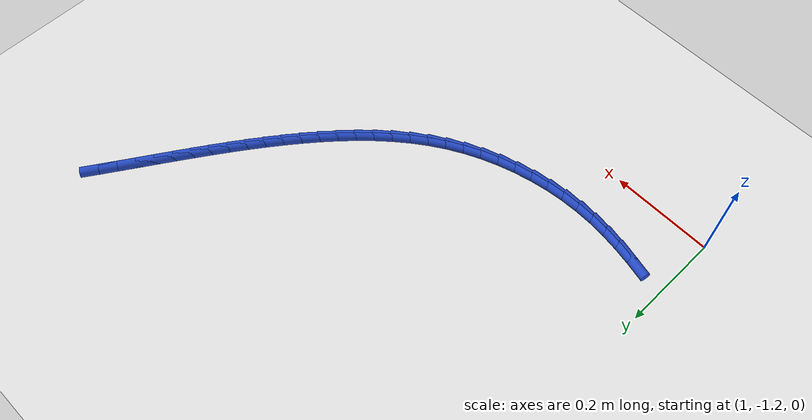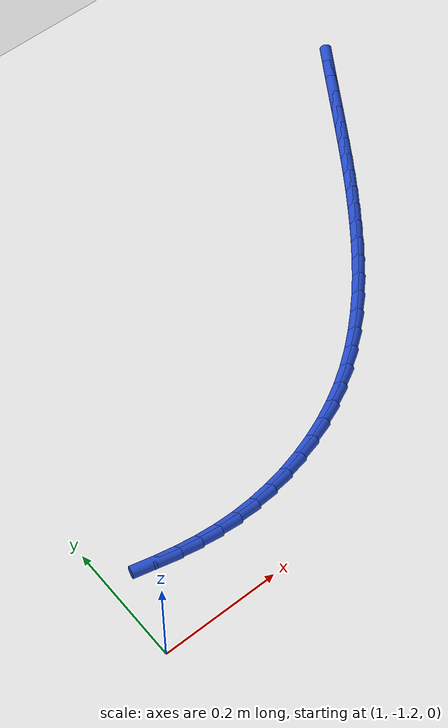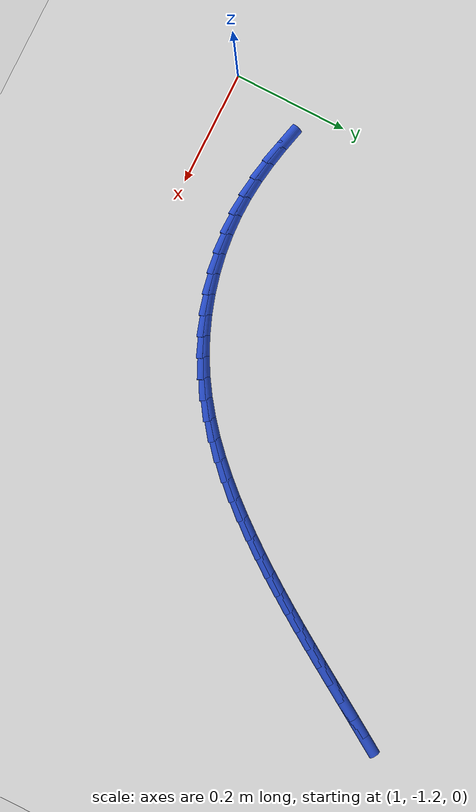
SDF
<sdf version="1.6">
 <world name="default">
  <model name="ground_plane">
   <static>1</static>
   <link name="link">
    <collision name="collision">
     <geometry><plane><normal>0 0 1</normal><size>100 100</size></plane></geometry>
     <surface><friction><ode><mu>100</mu><mu2>50</mu2></ode></friction></surface>
    </collision>
    <visual name="visual">
     <cast_shadows>0</cast_shadows>
     <geometry><plane><normal>0 0 1</normal><size>100 100</size></plane></geometry>
     <material>
      <script><uri>file://media/materials/scripts/gazebo.material</uri><name>Gazebo/WhiteGlow</name></script>
     </material>
    </visual>
   </link>
  </model>
  <model name="line">
   <link name="link_111">
    <pose>1.8955571593087832 -0.5098945809529504 0.01 0 1.57 1.0069118564584052</pose>
    <collision name="collision">
     <geometry><cylinder><radius>0.01</radius><length>0.08</length></cylinder></geometry>
    </collision>
    <visual name="visual">
     <material>
      <script><name>Gazebo/Blue</name><uri>file://media/materials/scripts/gazebo.material</uri></script>
     </material>
     <geometry><cylinder><radius>0.01</radius><length>0.08</length></cylinder></geometry>
    </visual>
   </link>
   <link name="link_112">
    <pose>1.8766444062649728 -0.5398021201382628 0.01 0 1.57 1.0102673231190997</pose>
    <collision name="collision">
     <geometry><cylinder><radius>0.01</radius><length>0.08</length></cylinder></geometry>
    </collision>
    <visual name="visual">
     <material>
      <script><name>Gazebo/Blue</name><uri>file://media/materials/scripts/gazebo.material</uri></script>
     </material>
     <geometry><cylinder><radius>0.01</radius><length>0.08</length></cylinder></geometry>
    </visual>
   </link>
   <link name="link_113">
    <pose>1.8579600042903914 -0.5695692021608962 0.01 0 1.57 1.0109697764478496</pose>
    <collision name="collision">
     <geometry><cylinder><radius>0.01</radius><length>0.08</length></cylinder></geometry>
    </collision>
    <visual name="visual">
     <material>
      <script><name>Gazebo/Blue</name><uri>file://media/materials/scripts/gazebo.material</uri></script>
     </material>
     <geometry><cylinder><radius>0.01</radius><length>0.08</length></cylinder></geometry>
    </visual>
   </link>
   <link name="link_114">
    <pose>1.8394034573542175 -0.5991787633503218 0.01 0 1.57 1.0089707595731063</pose>
    <collision name="collision">
     <geometry><cylinder><radius>0.01</radius><length>0.08</length></cylinder></geometry>
    </collision>
    <visual name="visual">
     <material>
      <script><name>Gazebo/Blue</name><uri>file://media/materials/scripts/gazebo.material</uri></script>
     </material>
     <geometry><cylinder><radius>0.01</radius><length>0.08</length></cylinder></geometry>
    </visual>
   </link>
   <link name="link_115">
    <pose>1.8208742694256272 -0.62861374003601 0.01 0 1.57 1.0042391082364222</pose>
    <collision name="collision">
     <geometry><cylinder><radius>0.01</radius><length>0.08</length></cylinder></geometry>
    </collision>
    <visual name="visual">
     <material>
      <script><name>Gazebo/Blue</name><uri>file://media/materials/scripts/gazebo.material</uri></script>
     </material>
     <geometry><cylinder><radius>0.01</radius><length>0.08</length></cylinder></geometry>
    </visual>
   </link>
   <link name="link_116">
    <pose>1.8022719444738 -0.6578570685474324 0.01 0 1.57 0.9967621589920037</pose>
    <collision name="collision">
     <geometry><cylinder><radius>0.01</radius><length>0.08</length></cylinder></geometry>
    </collision>
    <visual name="visual">
     <material>
      <script><name>Gazebo/Blue</name><uri>file://media/materials/scripts/gazebo.material</uri></script>
     </material>
     <geometry><cylinder><radius>0.01</radius><length>0.08</length></cylinder></geometry>
    </visual>
   </link>
   <link name="link_117">
    <pose>1.7834959864679125 -0.6868916852140603 0.01 0 1.57 0.9865472864909596</pose>
    <collision name="collision">
     <geometry><cylinder><radius>0.01</radius><length>0.08</length></cylinder></geometry>
    </collision>
    <visual name="visual">
     <material>
      <script><name>Gazebo/Blue</name><uri>file://media/materials/scripts/gazebo.material</uri></script>
     </material>
     <geometry><cylinder><radius>0.01</radius><length>0.08</length></cylinder></geometry>
    </visual>
   </link>
   <link name="link_118">
    <pose>1.7644458993771432 -0.7157005263653637 0.01 0 1.57 0.9736237173154415</pose>
    <collision name="collision">
     <geometry><cylinder><radius>0.01</radius><length>0.08</length></cylinder></geometry>
    </collision>
    <visual name="visual">
     <material>
      <script><name>Gazebo/Blue</name><uri>file://media/materials/scripts/gazebo.material</uri></script>
     </material>
     <geometry><cylinder><radius>0.01</radius><length>0.08</length></cylinder></geometry>
    </visual>
   </link>
   <link name="link_119">
    <pose>1.745021187170669 -0.7442665283308157 0.01 0 1.57 0.9580445101673196</pose>
    <collision name="collision">
     <geometry><cylinder><radius>0.01</radius><length>0.08</length></cylinder></geometry>
    </collision>
    <visual name="visual">
     <material>
      <script><name>Gazebo/Blue</name><uri>file://media/materials/scripts/gazebo.material</uri></script>
     </material>
     <geometry><cylinder><radius>0.01</radius><length>0.08</length></cylinder></geometry>
    </visual>
   </link>
   <link name="link_120">
    <pose>1.725121353817667 -0.7725726274398865 0.01 0 1.57 0.939888532464701</pose>
    <collision name="collision">
     <geometry><cylinder><radius>0.01</radius><length>0.08</length></cylinder></geometry>
    </collision>
    <visual name="visual">
     <material>
      <script><name>Gazebo/Blue</name><uri>file://media/materials/scripts/gazebo.material</uri></script>
     </material>
     <geometry><cylinder><radius>0.01</radius><length>0.08</length></cylinder></geometry>
    </visual>
   </link>
   <link name="link_121">
    <pose>1.7046459032873165 -0.8006017600220474 0.01 0 1.57 0.9192147660370584</pose>
    <collision name="collision">
     <geometry><cylinder><radius>0.01</radius><length>0.08</length></cylinder></geometry>
    </collision>
    <visual name="visual">
     <material>
      <script><name>Gazebo/Blue</name><uri>file://media/materials/scripts/gazebo.material</uri></script>
     </material>
     <geometry><cylinder><radius>0.01</radius><length>0.08</length></cylinder></geometry>
    </visual>
   </link>
   <link name="link_122">
    <pose>1.6834948248521404 -0.8283334974762596 0.01 0 1.57 0.8949337531426339</pose>
    <collision name="collision">
     <geometry><cylinder><radius>0.01</radius><length>0.08</length></cylinder></geometry>
    </collision>
    <visual name="visual">
     <material>
      <script><name>Gazebo/Blue</name><uri>file://media/materials/scripts/gazebo.material</uri></script>
     </material>
     <geometry><cylinder><radius>0.01</radius><length>0.08</length></cylinder></geometry>
    </visual>
   </link>
   <link name="link_123">
    <pose>1.661580145085411 -0.8556639485985437 0.01 0 1.57 0.8657345259381537</pose>
    <collision name="collision">
     <geometry><cylinder><radius>0.01</radius><length>0.08</length></cylinder></geometry>
    </collision>
    <visual name="visual">
     <material>
      <script><name>Gazebo/Blue</name><uri>file://media/materials/scripts/gazebo.material</uri></script>
     </material>
     <geometry><cylinder><radius>0.01</radius><length>0.08</length></cylinder></geometry>
    </visual>
   </link>
   <link name="link_124">
    <pose>1.6388264352201682 -0.8824022417248244 0.01 0 1.57 0.8313888661960267</pose>
    <collision name="collision">
     <geometry><cylinder><radius>0.01</radius><length>0.08</length></cylinder></geometry>
    </collision>
    <visual name="visual">
     <material>
      <script><name>Gazebo/Blue</name><uri>file://media/materials/scripts/gazebo.material</uri></script>
     </material>
     <geometry><cylinder><radius>0.01</radius><length>0.08</length></cylinder></geometry>
    </visual>
   </link>
   <link name="link_125">
    <pose>1.615158853318823 -0.9083534363131379 0.01 0 1.57 0.7917024987694329</pose>
    <collision name="collision">
     <geometry><cylinder><radius>0.01</radius><length>0.08</length></cylinder></geometry>
    </collision>
    <visual name="visual">
     <material>
      <script><name>Gazebo/Blue</name><uri>file://media/materials/scripts/gazebo.material</uri></script>
     </material>
     <geometry><cylinder><radius>0.01</radius><length>0.08</length></cylinder></geometry>
    </visual>
   </link>
   <link name="link_126">
    <pose>1.5905025574437874 -0.9333225918215233 0.01 0 1.57 0.746484330247545</pose>
    <collision name="collision">
     <geometry><cylinder><radius>0.01</radius><length>0.08</length></cylinder></geometry>
    </collision>
    <visual name="visual">
     <material>
      <script><name>Gazebo/Blue</name><uri>file://media/materials/scripts/gazebo.material</uri></script>
     </material>
     <geometry><cylinder><radius>0.01</radius><length>0.08</length></cylinder></geometry>
    </visual>
   </link>
   <link name="link_127">
    <pose>1.5647827056574721 -0.9571147677080166 0.01 0 1.57 0.6955810408849141</pose>
    <collision name="collision">
     <geometry><cylinder><radius>0.01</radius><length>0.08</length></cylinder></geometry>
    </collision>
    <visual name="visual">
     <material>
      <script><name>Gazebo/Blue</name><uri>file://media/materials/scripts/gazebo.material</uri></script>
     </material>
     <geometry><cylinder><radius>0.01</radius><length>0.08</length></cylinder></geometry>
    </visual>
   </link>
   <link name="link_128">
    <pose>1.5379244560222893 -0.9795350234306551 0.01 0 1.57 0.6389206097102053</pose>
    <collision name="collision">
     <geometry><cylinder><radius>0.01</radius><length>0.08</length></cylinder></geometry>
    </collision>
    <visual name="visual">
     <material>
      <script><name>Gazebo/Blue</name><uri>file://media/materials/scripts/gazebo.material</uri></script>
     </material>
     <geometry><cylinder><radius>0.01</radius><length>0.08</length></cylinder></geometry>
    </visual>
   </link>
   <link name="link_129">
    <pose>1.5098529666006504 -1.0003884184474763 0.01 0 1.57 0.5765636977888142</pose>
    <collision name="collision">
     <geometry><cylinder><radius>0.01</radius><length>0.08</length></cylinder></geometry>
    </collision>
    <visual name="visual">
     <material>
      <script><name>Gazebo/Blue</name><uri>file://media/materials/scripts/gazebo.material</uri></script>
     </material>
     <geometry><cylinder><radius>0.01</radius><length>0.08</length></cylinder></geometry>
    </visual>
   </link>
   <link name="link_130">
    <pose>1.4804933954549666 -1.0194800122165169 0.01 0 1.57 0.5091916497148785</pose>
    <collision name="collision">
     <geometry><cylinder><radius>0.01</radius><length>0.08</length></cylinder></geometry>
    </collision>
    <visual name="visual">
     <material>
      <script><name>Gazebo/Blue</name><uri>file://media/materials/scripts/gazebo.material</uri></script>
     </material>
     <geometry><cylinder><radius>0.01</radius><length>0.08</length></cylinder></geometry>
    </visual>
   </link>
   <link name="link_131">
    <pose>1.4497877149013514 -1.0366229299976661 0.01 0 1.57 0.441336494321018</pose>
    <collision name="collision">
     <geometry><cylinder><radius>0.01</radius><length>0.08</length></cylinder></geometry>
    </collision>
    <visual name="visual">
     <material>
      <script><name>Gazebo/Blue</name><uri>file://media/materials/scripts/gazebo.material</uri></script>
     </material>
     <geometry><cylinder><radius>0.01</radius><length>0.08</length></cylinder></geometry>
    </visual>
   </link>
   <link name="link_132">
    <pose>1.4178478020280612 -1.0517118004139765 0.01 0 1.57 0.37503575925252997</pose>
    <collision name="collision">
     <geometry><cylinder><radius>0.01</radius><length>0.08</length></cylinder></geometry>
    </collision>
    <visual name="visual">
     <material>
      <script><name>Gazebo/Blue</name><uri>file://media/materials/scripts/gazebo.material</uri></script>
     </material>
     <geometry><cylinder><radius>0.01</radius><length>0.08</length></cylinder></geometry>
    </visual>
   </link>
   <link name="link_133">
    <pose>1.384884119152895 -1.0646885434486248 0.01 0 1.57 0.30967253331766703</pose>
    <collision name="collision">
     <geometry><cylinder><radius>0.01</radius><length>0.08</length></cylinder></geometry>
    </collision>
    <visual name="visual">
     <material>
      <script><name>Gazebo/Blue</name><uri>file://media/materials/scripts/gazebo.material</uri></script>
     </material>
     <geometry><cylinder><radius>0.01</radius><length>0.08</length></cylinder></geometry>
    </visual>
   </link>
   <link name="link_134">
    <pose>1.3511083403095803 -1.0754956603452308 0.01 0 1.57 0.2445937307580888</pose>
    <collision name="collision">
     <geometry><cylinder><radius>0.01</radius><length>0.08</length></cylinder></geometry>
    </collision>
    <visual name="visual">
     <material>
      <script><name>Gazebo/Blue</name><uri>file://media/materials/scripts/gazebo.material</uri></script>
     </material>
     <geometry><cylinder><radius>0.01</radius><length>0.08</length></cylinder></geometry>
    </visual>
   </link>
   <link name="link_135">
    <pose>1.3167321395318434 -1.0840756523474144 0.01 0 1.57 0.1791425079773024</pose>
    <collision name="collision">
     <geometry><cylinder><radius>0.01</radius><length>0.08</length></cylinder></geometry>
    </collision>
    <visual name="visual">
     <material>
      <script><name>Gazebo/Blue</name><uri>file://media/materials/scripts/gazebo.material</uri></script>
     </material>
     <geometry><cylinder><radius>0.01</radius><length>0.08</length></cylinder></geometry>
    </visual>
   </link>
   <link name="link_136">
    <pose>1.2819671908534096 -1.0903710206987947 0.01 0 1.57 0.11265824872378975</pose>
    <collision name="collision">
     <geometry><cylinder><radius>0.01</radius><length>0.08</length></cylinder></geometry>
    </collision>
    <visual name="visual">
     <material>
      <script><name>Gazebo/Blue</name><uri>file://media/materials/scripts/gazebo.material</uri></script>
     </material>
     <geometry><cylinder><radius>0.01</radius><length>0.08</length></cylinder></geometry>
    </visual>
   </link>
   <link name="link_137">
    <pose>1.2470251683080062 -1.0943242666429915 0.01 0 1.57 0.044477651103819585</pose>
    <collision name="collision">
     <geometry><cylinder><radius>0.01</radius><length>0.08</length></cylinder></geometry>
    </collision>
    <visual name="visual">
     <material>
      <script><name>Gazebo/Blue</name><uri>file://media/materials/scripts/gazebo.material</uri></script>
     </material>
     <geometry><cylinder><radius>0.01</radius><length>0.08</length></cylinder></geometry>
    </visual>
   </link>
   <link name="link_138">
    <pose>1.2121177459293593 -1.095877891423625 0.01 0 1.57 -0.025931912076260423</pose>
    <collision name="collision">
     <geometry><cylinder><radius>0.01</radius><length>0.08</length></cylinder></geometry>
    </collision>
    <visual name="visual">
     <material>
      <script><name>Gazebo/Blue</name><uri>file://media/materials/scripts/gazebo.material</uri></script>
     </material>
     <geometry><cylinder><radius>0.01</radius><length>0.08</length></cylinder></geometry>
    </visual>
   </link>
   <link name="link_139">
    <pose>1.1774535590577901 -1.0949787812286753 0.01 0 1.57 -0.09405080334880923</pose>
    <collision name="collision">
     <geometry><cylinder><radius>0.01</radius><length>0.08</length></cylinder></geometry>
    </collision>
    <visual name="visual">
     <material>
      <script><name>Gazebo/Blue</name><uri>file://media/materials/scripts/gazebo.material</uri></script>
     </material>
     <geometry><cylinder><radius>0.01</radius><length>0.08</length></cylinder></geometry>
    </visual>
   </link>
   <link name="link_140">
    <pose>1.1431256283115094 -1.091740658466818 0.01 0 1.57 -0.15295634003690076</pose>
    <collision name="collision">
     <geometry><cylinder><radius>0.01</radius><length>0.08</length></cylinder></geometry>
    </collision>
    <visual name="visual">
     <material>
      <script><name>Gazebo/Blue</name><uri>file://media/materials/scripts/gazebo.material</uri></script>
     </material>
     <geometry><cylinder><radius>0.01</radius><length>0.08</length></cylinder></geometry>
    </visual>
   </link>
   <link name="link_141">
    <pose>1.1090782253857256 -1.0864918956163263 0.01 0 1.57 -0.2016666803750034</pose>
    <collision name="collision">
     <geometry><cylinder><radius>0.01</radius><length>0.08</length></cylinder></geometry>
    </collision>
    <visual name="visual">
     <material>
      <script><name>Gazebo/Blue</name><uri>file://media/materials/scripts/gazebo.material</uri></script>
     </material>
     <geometry><cylinder><radius>0.01</radius><length>0.08</length></cylinder></geometry>
    </visual>
   </link>
   <link name="link_142">
    <pose>1.0752458242449896 -1.0795750036347618 0.01 0 1.57 -0.23999259707616544</pose>
    <collision name="collision">
     <geometry><cylinder><radius>0.01</radius><length>0.08</length></cylinder></geometry>
    </collision>
    <visual name="visual">
     <material>
      <script><name>Gazebo/Blue</name><uri>file://media/materials/scripts/gazebo.material</uri></script>
     </material>
     <geometry><cylinder><radius>0.01</radius><length>0.08</length></cylinder></geometry>
    </visual>
   </link>
  </model>
 </world>
</sdf>
